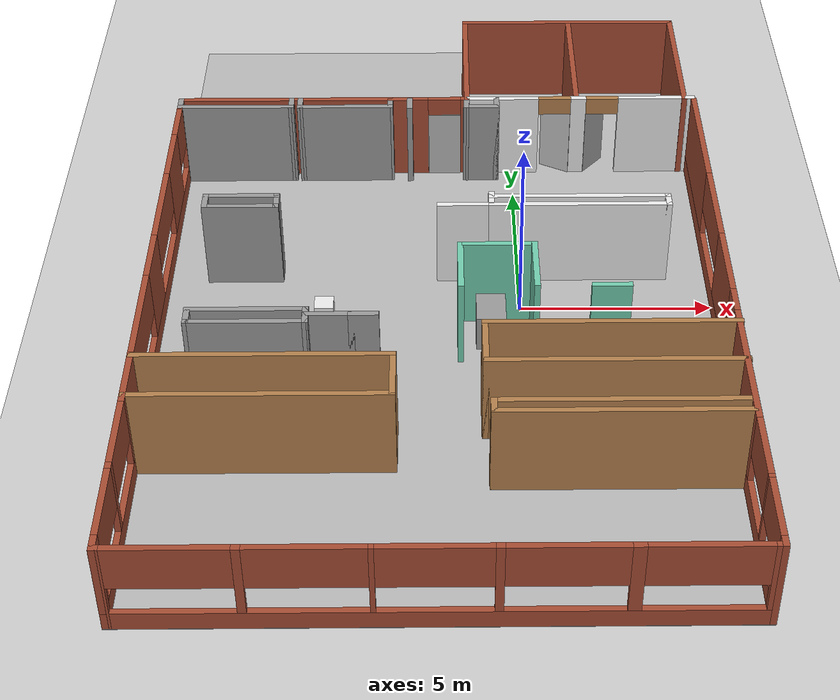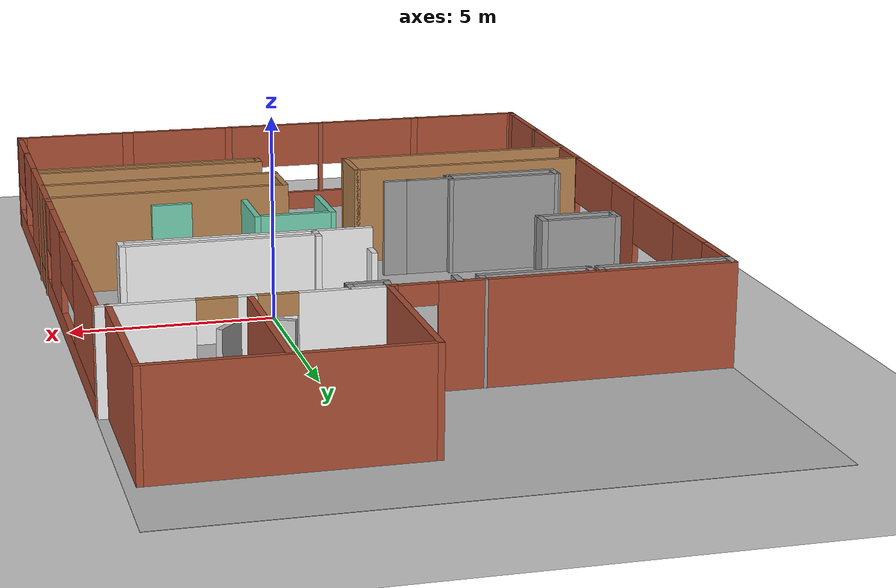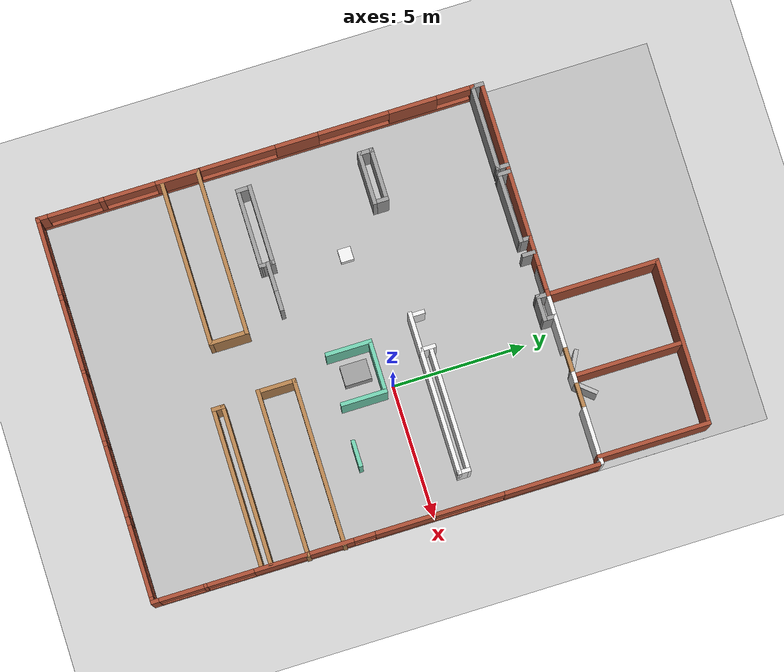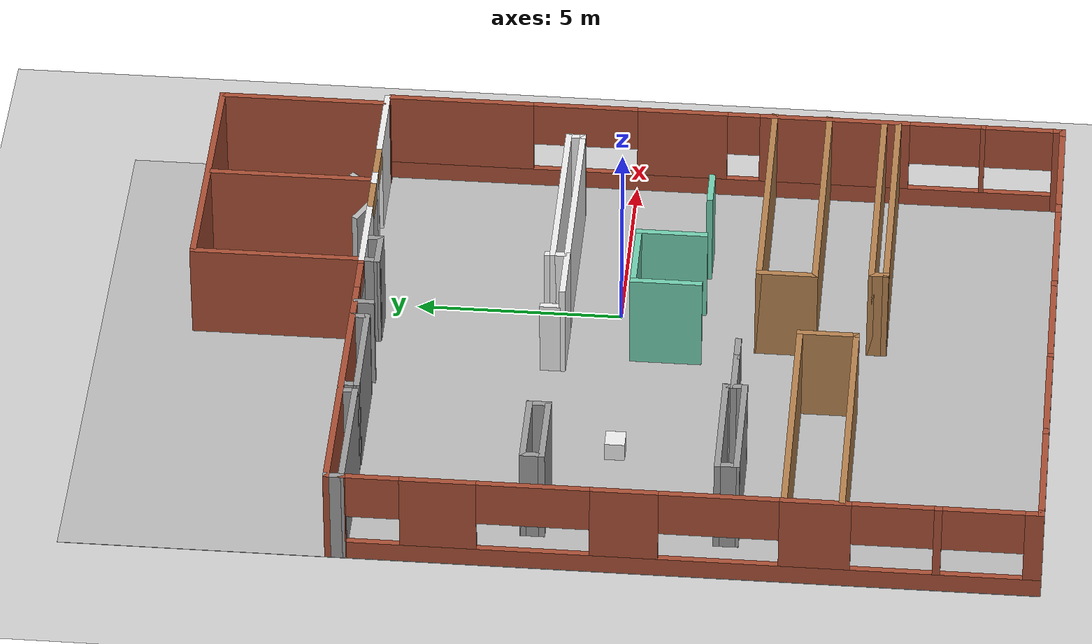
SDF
<sdf version="1.7">
 <world name="default">
  <light name="sun" type="directional">
   <pose>0 0 10 0 -0 0</pose>
   <diffuse>0.8 0.8 0.8 1</diffuse>
   <specular>0.2 0.2 0.2 1</specular>
   <attenuation>
    <range>1000</range>
    <constant>0.9</constant>
    <linear>0.01</linear>
    <quadratic>0.001</quadratic>
   </attenuation>
   <direction>-0.5 0.1 -0.9</direction>
   <spot><inner_angle>0</inner_angle><outer_angle>0</outer_angle><falloff>0</falloff></spot>
  </light>
  <model name="ground_plane">
   <static>1</static>
   <link name="link">
    <collision name="collision">
     <geometry><plane><normal>0 0 1</normal><size>100 100</size></plane></geometry>
     <surface>
      <contact><collide_bitmask>65535</collide_bitmask></contact>
      <friction><ode><mu>100</mu><mu2>50</mu2></ode></friction>
     </surface>
    </collision>
    <visual name="visual">
     <cast_shadows>0</cast_shadows>
     <geometry><plane><normal>0 0 1</normal><size>100 100</size></plane></geometry>
     <material>
      <script><uri>file://media/materials/scripts/gazebo.material</uri><name>Gazebo/Grey</name></script>
     </material>
    </visual>
   </link>
  </model>
  <gravity>0 0 -9.8</gravity>
  <magnetic_field>6e-06 2.3e-05 -4.2e-05</magnetic_field>
  <atmosphere type="adiabatic"/>
  <physics type="ode">
   <max_step_size>0.001</max_step_size>
   <real_time_factor>1</real_time_factor>
   <real_time_update_rate>1000</real_time_update_rate>
  </physics>
  <scene><ambient>0.4 0.4 0.4 1</ambient><background>0.7 0.7 0.7 1</background><shadows>1</shadows></scene>
  <spherical_coordinates>
   <surface_model>EARTH_WGS84</surface_model>
   <latitude_deg>0</latitude_deg>
   <longitude_deg>0</longitude_deg>
   <elevation>0</elevation>
   <heading_deg>0</heading_deg>
  </spherical_coordinates>
  <model name="1cs_v2">
   <pose>-2.09868 -0.09237 0 0 -0 0</pose>
   <link name="Wall_0">
    <pose>-7.1889 -2.22765 0 0 -0 -1.5708</pose>
    <visual name="Wall_0_Visual_0">
     <pose>-8.16435 0 1.25 0 -0 0</pose>
     <geometry><box><size>0.171298 0.15 2.5</size></box></geometry>
     <material>
      <script><uri>file://media/materials/scripts/gazebo.material</uri><name>Gazebo/Bricks</name></script>
      <ambient>1 1 1 1</ambient>
     </material>
     <meta><layer>0</layer></meta>
    </visual>
    <collision name="Wall_0_Collision_0">
     <geometry><box><size>0.171298 0.15 2.5</size></box></geometry>
     <pose>-8.16435 0 1.25 0 -0 0</pose>
    </collision>
    <visual name="Wall_0_Visual_1">
     <pose>0.085649 0 0.25 0 -0 0</pose>
     <geometry><box><size>16.3287 0.15 0.5</size></box></geometry>
     <material>
      <script><uri>file://media/materials/scripts/gazebo.material</uri><name>Gazebo/Bricks</name></script>
      <ambient>1 1 1 1</ambient>
     </material>
     <meta><layer>0</layer></meta>
    </visual>
    <collision name="Wall_0_Collision_1">
     <geometry><box><size>16.3287 0.15 0.5</size></box></geometry>
     <pose>0.085649 0 0.25 0 -0 0</pose>
    </collision>
    <visual name="Wall_0_Visual_2">
     <pose>-5.91311 0 1.5 0 -0 0</pose>
     <geometry><box><size>1.8087 0.15 2</size></box></geometry>
     <material>
      <script><uri>file://media/materials/scripts/gazebo.material</uri><name>Gazebo/Bricks</name></script>
      <ambient>1 1 1 1</ambient>
     </material>
     <meta><layer>0</layer></meta>
    </visual>
    <collision name="Wall_0_Collision_2">
     <geometry><box><size>1.8087 0.15 2</size></box></geometry>
     <pose>-5.91311 0 1.5 0 -0 0</pose>
    </collision>
    <visual name="Wall_0_Visual_3">
     <pose>-1.54382 0 1.5 0 -0 0</pose>
     <geometry><box><size>1.60965 0.15 2</size></box></geometry>
     <material>
      <script><uri>file://media/materials/scripts/gazebo.material</uri><name>Gazebo/Bricks</name></script>
      <ambient>1 1 1 1</ambient>
     </material>
     <meta><layer>0</layer></meta>
    </visual>
    <collision name="Wall_0_Collision_3">
     <geometry><box><size>1.60965 0.15 2</size></box></geometry>
     <pose>-1.54382 0 1.5 0 -0 0</pose>
    </collision>
    <visual name="Wall_0_Visual_4">
     <pose>2.92476 0 1.5 0 -0 0</pose>
     <geometry><box><size>1.6805 0.15 2</size></box></geometry>
     <material>
      <script><uri>file://media/materials/scripts/gazebo.material</uri><name>Gazebo/Bricks</name></script>
      <ambient>1 1 1 1</ambient>
     </material>
     <meta><layer>0</layer></meta>
    </visual>
    <collision name="Wall_0_Collision_4">
     <geometry><box><size>1.6805 0.15 2</size></box></geometry>
     <pose>2.92476 0 1.5 0 -0 0</pose>
    </collision>
    <visual name="Wall_0_Visual_5">
     <pose>5.78474 0 1.5 0 -0 0</pose>
     <geometry><box><size>0.188569 0.15 2</size></box></geometry>
     <material>
      <script><uri>file://media/materials/scripts/gazebo.material</uri><name>Gazebo/Bricks</name></script>
      <ambient>1 1 1 1</ambient>
     </material>
     <meta><layer>0</layer></meta>
    </visual>
    <collision name="Wall_0_Collision_5">
     <geometry><box><size>0.188569 0.15 2</size></box></geometry>
     <pose>5.78474 0 1.5 0 -0 0</pose>
    </collision>
    <visual name="Wall_0_Visual_6">
     <pose>8.02724 0 1.5 0 -0 0</pose>
     <geometry><box><size>0.445524 0.15 2</size></box></geometry>
     <material>
      <script><uri>file://media/materials/scripts/gazebo.material</uri><name>Gazebo/Bricks</name></script>
      <ambient>1 1 1 1</ambient>
     </material>
     <meta><layer>0</layer></meta>
    </visual>
    <collision name="Wall_0_Collision_6">
     <geometry><box><size>0.445524 0.15 2</size></box></geometry>
     <pose>8.02724 0 1.5 0 -0 0</pose>
    </collision>
    <visual name="Wall_0_Visual_7">
     <pose>-7.44808 0 1.9 0 -0 0</pose>
     <geometry><box><size>1.26125 0.15 1.2</size></box></geometry>
     <material>
      <script><uri>file://media/materials/scripts/gazebo.material</uri><name>Gazebo/Bricks</name></script>
      <ambient>1 1 1 1</ambient>
     </material>
     <meta><layer>0</layer></meta>
    </visual>
    <collision name="Wall_0_Collision_7">
     <geometry><box><size>1.26125 0.15 1.2</size></box></geometry>
     <pose>-7.44808 0 1.9 0 -0 0</pose>
    </collision>
    <visual name="Wall_0_Visual_8">
     <pose>-3.6787 0 1.9 0 -0 0</pose>
     <geometry><box><size>2.66011 0.15 1.2</size></box></geometry>
     <material>
      <script><uri>file://media/materials/scripts/gazebo.material</uri><name>Gazebo/Bricks</name></script>
      <ambient>1 1 1 1</ambient>
     </material>
     <meta><layer>0</layer></meta>
    </visual>
    <collision name="Wall_0_Collision_8">
     <geometry><box><size>2.66011 0.15 1.2</size></box></geometry>
     <pose>-3.6787 0 1.9 0 -0 0</pose>
    </collision>
    <visual name="Wall_0_Visual_9">
     <pose>0.672759 0 1.9 0 -0 0</pose>
     <geometry><box><size>2.82351 0.15 1.2</size></box></geometry>
     <material>
      <script><uri>file://media/materials/scripts/gazebo.material</uri><name>Gazebo/Bricks</name></script>
      <ambient>1 1 1 1</ambient>
     </material>
     <meta><layer>0</layer></meta>
    </visual>
    <collision name="Wall_0_Collision_9">
     <geometry><box><size>2.82351 0.15 1.2</size></box></geometry>
     <pose>0.672759 0 1.9 0 -0 0</pose>
    </collision>
    <visual name="Wall_0_Visual_10">
     <pose>4.72774 0 1.9 0 -0 0</pose>
     <geometry><box><size>1.92545 0.15 1.2</size></box></geometry>
     <material>
      <script><uri>file://media/materials/scripts/gazebo.material</uri><name>Gazebo/Bricks</name></script>
      <ambient>1 1 1 1</ambient>
     </material>
     <meta><layer>0</layer></meta>
    </visual>
    <collision name="Wall_0_Collision_10">
     <geometry><box><size>1.92545 0.15 1.2</size></box></geometry>
     <pose>4.72774 0 1.9 0 -0 0</pose>
    </collision>
    <visual name="Wall_0_Visual_11">
     <pose>6.84175 0 1.9 0 -0 0</pose>
     <geometry><box><size>1.92545 0.15 1.2</size></box></geometry>
     <material>
      <script><uri>file://media/materials/scripts/gazebo.material</uri><name>Gazebo/Bricks</name></script>
      <ambient>1 1 1 1</ambient>
     </material>
     <meta><layer>0</layer></meta>
    </visual>
    <collision name="Wall_0_Collision_11">
     <geometry><box><size>1.92545 0.15 1.2</size></box></geometry>
     <pose>6.84175 0 1.9 0 -0 0</pose>
    </collision>
   </link>
   <link name="Wall_10">
    <pose>7.1611 -2.10265 0 0 -0 1.5708</pose>
    <visual name="Wall_10_Visual_0">
     <pose>-8.22126 0 1.25 0 -0 0</pose>
     <geometry><box><size>0.307478 0.15 2.5</size></box></geometry>
     <material>
      <script><uri>file://media/materials/scripts/gazebo.material</uri><name>Gazebo/Bricks</name></script>
      <ambient>1 1 1 1</ambient>
     </material>
     <meta><layer>0</layer></meta>
    </visual>
    <collision name="Wall_10_Collision_0">
     <geometry><box><size>0.307478 0.15 2.5</size></box></geometry>
     <pose>-8.22126 0 1.25 0 -0 0</pose>
    </collision>
    <visual name="Wall_10_Visual_1">
     <pose>0.153739 0 0.25 0 -0 0</pose>
     <geometry><box><size>16.4425 0.15 0.5</size></box></geometry>
     <material>
      <script><uri>file://media/materials/scripts/gazebo.material</uri><name>Gazebo/Bricks</name></script>
      <ambient>1 1 1 1</ambient>
     </material>
     <meta><layer>0</layer></meta>
    </visual>
    <collision name="Wall_10_Collision_1">
     <geometry><box><size>16.4425 0.15 0.5</size></box></geometry>
     <pose>0.153739 0 0.25 0 -0 0</pose>
    </collision>
    <visual name="Wall_10_Visual_2">
     <pose>-6.34004 0 1.5 0 -0 0</pose>
     <geometry><box><size>0.121166 0.15 2</size></box></geometry>
     <material>
      <script><uri>file://media/materials/scripts/gazebo.material</uri><name>Gazebo/Bricks</name></script>
      <ambient>1 1 1 1</ambient>
     </material>
     <meta><layer>0</layer></meta>
    </visual>
    <collision name="Wall_10_Collision_2">
     <geometry><box><size>0.121166 0.15 2</size></box></geometry>
     <pose>-6.34004 0 1.5 0 -0 0</pose>
    </collision>
    <visual name="Wall_10_Visual_3">
     <pose>-2.68236 0 1.5 0 -0 0</pose>
     <geometry><box><size>3.70831 0.15 2</size></box></geometry>
     <material>
      <script><uri>file://media/materials/scripts/gazebo.material</uri><name>Gazebo/Bricks</name></script>
      <ambient>1 1 1 1</ambient>
     </material>
     <meta><layer>0</layer></meta>
    </visual>
    <collision name="Wall_10_Collision_3">
     <geometry><box><size>3.70831 0.15 2</size></box></geometry>
     <pose>-2.68236 0 1.5 0 -0 0</pose>
    </collision>
    <visual name="Wall_10_Visual_4">
     <pose>1.08606 0 1.5 0 -0 0</pose>
     <geometry><box><size>2.22852 0.15 2</size></box></geometry>
     <material>
      <script><uri>file://media/materials/scripts/gazebo.material</uri><name>Gazebo/Bricks</name></script>
      <ambient>1 1 1 1</ambient>
     </material>
     <meta><layer>0</layer></meta>
    </visual>
    <collision name="Wall_10_Collision_4">
     <geometry><box><size>2.22852 0.15 2</size></box></geometry>
     <pose>1.08606 0 1.5 0 -0 0</pose>
    </collision>
    <visual name="Wall_10_Visual_5">
     <pose>6.58035 0 1.5 0 -0 0</pose>
     <geometry><box><size>3.5893 0.15 2</size></box></geometry>
     <material>
      <script><uri>file://media/materials/scripts/gazebo.material</uri><name>Gazebo/Bricks</name></script>
      <ambient>1 1 1 1</ambient>
     </material>
     <meta><layer>0</layer></meta>
    </visual>
    <collision name="Wall_10_Collision_5">
     <geometry><box><size>3.5893 0.15 2</size></box></geometry>
     <pose>6.58035 0 1.5 0 -0 0</pose>
    </collision>
    <visual name="Wall_10_Visual_6">
     <pose>-7.23407 0 1.9 0 -0 0</pose>
     <geometry><box><size>1.6669 0.15 1.2</size></box></geometry>
     <material>
      <script><uri>file://media/materials/scripts/gazebo.material</uri><name>Gazebo/Bricks</name></script>
      <ambient>1 1 1 1</ambient>
     </material>
     <meta><layer>0</layer></meta>
    </visual>
    <collision name="Wall_10_Collision_6">
     <geometry><box><size>1.6669 0.15 1.2</size></box></geometry>
     <pose>-7.23407 0 1.9 0 -0 0</pose>
    </collision>
    <visual name="Wall_10_Visual_7">
     <pose>-5.40799 0 1.9 0 -0 0</pose>
     <geometry><box><size>1.74294 0.15 1.2</size></box></geometry>
     <material>
      <script><uri>file://media/materials/scripts/gazebo.material</uri><name>Gazebo/Bricks</name></script>
      <ambient>1 1 1 1</ambient>
     </material>
     <meta><layer>0</layer></meta>
    </visual>
    <collision name="Wall_10_Collision_7">
     <geometry><box><size>1.74294 0.15 1.2</size></box></geometry>
     <pose>-5.40799 0 1.9 0 -0 0</pose>
    </collision>
    <visual name="Wall_10_Visual_8">
     <pose>-0.428203 0 1.9 0 -0 0</pose>
     <geometry><box><size>0.8 0.15 1.2</size></box></geometry>
     <material>
      <script><uri>file://media/materials/scripts/gazebo.material</uri><name>Gazebo/Bricks</name></script>
      <ambient>1 1 1 1</ambient>
     </material>
     <meta><layer>0</layer></meta>
    </visual>
    <collision name="Wall_10_Collision_8">
     <geometry><box><size>0.8 0.15 1.2</size></box></geometry>
     <pose>-0.428203 0 1.9 0 -0 0</pose>
    </collision>
    <visual name="Wall_10_Visual_9">
     <pose>3.49301 0 1.9 0 -0 0</pose>
     <geometry><box><size>2.58537 0.15 1.2</size></box></geometry>
     <material>
      <script><uri>file://media/materials/scripts/gazebo.material</uri><name>Gazebo/Bricks</name></script>
      <ambient>1 1 1 1</ambient>
     </material>
     <meta><layer>0</layer></meta>
    </visual>
    <collision name="Wall_10_Collision_9">
     <geometry><box><size>2.58537 0.15 1.2</size></box></geometry>
     <pose>3.49301 0 1.9 0 -0 0</pose>
    </collision>
   </link>
   <link name="Wall_101">
    <collision name="Wall_101_Collision">
     <geometry><box><size>2.66781 0.15 2.5</size></box></geometry>
     <pose>0 0 1.25 0 -0 0</pose>
    </collision>
    <visual name="Wall_101_Visual">
     <pose>0 0 1.25 0 -0 0</pose>
     <geometry><box><size>2.66781 0.15 2.5</size></box></geometry>
     <material>
      <script><uri>file://media/materials/scripts/gazebo.material</uri><name>Gazebo/Grey</name></script>
      <ambient>1 1 1 1</ambient>
     </material>
     <meta><layer>0</layer></meta>
    </visual>
    <pose>-2.59778 5.93848 0 0 -0 0.007052</pose>
   </link>
   <link name="Wall_12">
    <collision name="Wall_12_Collision">
     <geometry><box><size>0.532123 0.15 2.5</size></box></geometry>
     <pose>0 0 1.25 0 -0 0</pose>
    </collision>
    <visual name="Wall_12_Visual">
     <pose>0 0 1.25 0 -0 0</pose>
     <geometry><box><size>0.532123 0.15 2.5</size></box></geometry>
     <material>
      <script><uri>file://media/materials/scripts/gazebo.material</uri><name>Gazebo/Grey</name></script>
      <ambient>1 1 1 1</ambient>
     </material>
     <meta><layer>0</layer></meta>
    </visual>
    <pose>0.790397 6.11196 0 0 -0 -1.63317</pose>
   </link>
   <link name="Wall_14">
    <collision name="Wall_14_Collision">
     <geometry><box><size>1 0.15 2.5</size></box></geometry>
     <pose>0 0 1.25 0 -0 0</pose>
    </collision>
    <visual name="Wall_14_Visual">
     <pose>0 0 1.25 0 -0 0</pose>
     <geometry><box><size>1 0.15 2.5</size></box></geometry>
     <material>
      <script><uri>file://media/materials/scripts/gazebo.material</uri><name>Gazebo/Grey</name></script>
      <ambient>1 1 1 1</ambient>
     </material>
     <meta><layer>0</layer></meta>
    </visual>
    <pose>1.20349 5.92127 0 0 -0 0</pose>
   </link>
   <link name="Wall_15">
    <collision name="Wall_15_Collision">
     <geometry><box><size>0.5 0.15 2.5</size></box></geometry>
     <pose>0 0 1.25 0 -0 0</pose>
    </collision>
    <visual name="Wall_15_Visual">
     <pose>0 0 1.25 0 -0 0</pose>
     <geometry><box><size>0.5 0.15 2.5</size></box></geometry>
     <material>
      <script><uri>file://media/materials/scripts/gazebo.material</uri><name>Gazebo/Grey</name></script>
      <ambient>1 1 1 1</ambient>
     </material>
     <meta><layer>0</layer></meta>
    </visual>
    <pose>1.62849 6.09627 0 0 -0 1.5708</pose>
   </link>
   <link name="Wall_27">
    <collision name="Wall_27_Collision">
     <geometry><box><size>0.5 0.15 2.5</size></box></geometry>
     <pose>0 0 1.25 0 -0 0</pose>
    </collision>
    <visual name="Wall_27_Visual">
     <pose>0 0 1.25 0 -0 0</pose>
     <geometry><box><size>0.5 0.15 2.5</size></box></geometry>
     <material>
      <script><uri>file://media/materials/scripts/gazebo.material</uri><name>Gazebo/Grey</name></script>
      <ambient>1 1 1 1</ambient>
     </material>
     <meta><layer>0</layer></meta>
    </visual>
    <pose>-0.79635 6.07769 0 0 -0 1.5708</pose>
   </link>
   <link name="Wall_3">
    <collision name="Wall_3_Collision">
     <geometry><box><size>0.5 0.15 2.5</size></box></geometry>
     <pose>0 0 1.25 0 -0 0</pose>
    </collision>
    <visual name="Wall_3_Visual">
     <pose>0 0 1.25 0 -0 0</pose>
     <geometry><box><size>0.5 0.15 2.5</size></box></geometry>
     <material>
      <script><uri>file://media/materials/scripts/gazebo.material</uri><name>Gazebo/Grey</name></script>
      <ambient>1 1 1 1</ambient>
     </material>
     <meta><layer>0</layer></meta>
    </visual>
    <pose>-1.3389 6.12235 0 0 -0 1.5708</pose>
   </link>
   <link name="Wall_33">
    <collision name="Wall_33_Collision">
     <geometry><box><size>4.25 0.15 2.5</size></box></geometry>
     <pose>0 0 1.25 0 -0 0</pose>
    </collision>
    <visual name="Wall_33_Visual">
     <pose>0 0 1.25 0 -0 0</pose>
     <geometry><box><size>4.25 0.15 2.5</size></box></geometry>
     <material>
      <script><uri>file://media/materials/scripts/gazebo.material</uri><name>Gazebo/Bricks</name></script>
      <ambient>1 1 1 1</ambient>
     </material>
     <meta><layer>0</layer></meta>
    </visual>
    <pose>0.802307 8.35265 0 0 -0 1.5708</pose>
   </link>
   <link name="Wall_34">
    <collision name="Wall_34_Collision">
     <geometry><box><size>6.25 0.15 2.5</size></box></geometry>
     <pose>0 0 1.25 0 -0 0</pose>
    </collision>
    <visual name="Wall_34_Visual">
     <pose>0 0 1.25 0 -0 0</pose>
     <geometry><box><size>6.25 0.15 2.5</size></box></geometry>
     <material>
      <script><uri>file://media/materials/scripts/gazebo.material</uri><name>Gazebo/Bricks</name></script>
      <ambient>1 1 1 1</ambient>
     </material>
     <meta><layer>0</layer></meta>
    </visual>
    <pose>3.85231 10.4026 0 0 -0 0</pose>
   </link>
   <link name="Wall_35">
    <collision name="Wall_35_Collision">
     <geometry><box><size>4.25 0.15 2.5</size></box></geometry>
     <pose>0 0 1.25 0 -0 0</pose>
    </collision>
    <visual name="Wall_35_Visual">
     <pose>0 0 1.25 0 -0 0</pose>
     <geometry><box><size>4.25 0.15 2.5</size></box></geometry>
     <material>
      <script><uri>file://media/materials/scripts/gazebo.material</uri><name>Gazebo/Bricks</name></script>
      <ambient>1 1 1 1</ambient>
     </material>
     <meta><layer>0</layer></meta>
    </visual>
    <pose>6.90231 8.35265 0 0 -0 -1.5708</pose>
   </link>
   <link name="Wall_37">
    <collision name="Wall_37_Collision">
     <geometry><box><size>4 0.15 2.5</size></box></geometry>
     <pose>0 0 1.25 0 -0 0</pose>
    </collision>
    <visual name="Wall_37_Visual">
     <pose>0 0 1.25 0 -0 0</pose>
     <geometry><box><size>4 0.15 2.5</size></box></geometry>
     <material>
      <script><uri>file://media/materials/scripts/gazebo.material</uri><name>Gazebo/Bricks</name></script>
      <ambient>1 1 1 1</ambient>
     </material>
     <meta><layer>0</layer></meta>
    </visual>
    <pose>3.8726 8.38806 0 0 -0 -1.5708</pose>
   </link>
   <link name="Wall_39">
    <collision name="Wall_39_Collision">
     <geometry><box><size>0.5 0.15 2.5</size></box></geometry>
     <pose>0 0 1.25 0 -0 0</pose>
    </collision>
    <visual name="Wall_39_Visual">
     <pose>0 0 0.75 0 -0 0</pose>
     <geometry><box><size>0.5 0.15 2.5</size></box></geometry>
     <material>
      <script><name>Gazebo/White</name><uri>__default__</uri></script>
      <ambient>1 1 1 1</ambient>
     </material>
     <meta><layer>0</layer></meta>
    </visual>
    <pose>0.023831 1.66523 0 0 -0 -1.5708</pose>
   </link>
   <link name="Wall_4">
    <pose>-0.268298 6.3 0 0 -0 0.002472</pose>
    <visual name="Wall_4_Visual_0">
     <pose>-0.580437 0 1.25 0 -0 0</pose>
     <geometry><box><size>1.13034 0.15 2.5</size></box></geometry>
     <material>
      <script><uri>file://media/materials/scripts/gazebo.material</uri><name>Gazebo/Bricks</name></script>
      <ambient>1 1 1 1</ambient>
     </material>
     <meta><layer>0</layer></meta>
    </visual>
    <collision name="Wall_4_Collision_0">
     <geometry><box><size>1.13034 0.15 2.5</size></box></geometry>
     <pose>-0.580437 0 1.25 0 -0 0</pose>
    </collision>
    <visual name="Wall_4_Visual_1">
     <pose>1.01517 0 1.25 0 -0 0</pose>
     <geometry><box><size>0.260874 0.15 2.5</size></box></geometry>
     <material>
      <script><uri>file://media/materials/scripts/gazebo.material</uri><name>Gazebo/Bricks</name></script>
      <ambient>1 1 1 1</ambient>
     </material>
     <meta><layer>0</layer></meta>
    </visual>
    <collision name="Wall_4_Collision_1">
     <geometry><box><size>0.260874 0.15 2.5</size></box></geometry>
     <pose>1.01517 0 1.25 0 -0 0</pose>
    </collision>
    <visual name="Wall_4_Visual_2">
     <pose>0.434734 0 2.25 0 -0 0</pose>
     <geometry><box><size>0.9 0.15 0.5</size></box></geometry>
     <material>
      <script><uri>file://media/materials/scripts/gazebo.material</uri><name>Gazebo/Bricks</name></script>
      <ambient>1 1 1 1</ambient>
     </material>
     <meta><layer>0</layer></meta>
    </visual>
    <collision name="Wall_4_Collision_2">
     <geometry><box><size>0.9 0.15 0.5</size></box></geometry>
     <pose>0.434734 0 2.25 0 -0 0</pose>
    </collision>
   </link>
   <link name="Wall_40">
    <collision name="Wall_40_Collision">
     <geometry><box><size>1.5 0.15 2.5</size></box></geometry>
     <pose>0 0 1.25 0 -0 0</pose>
    </collision>
    <visual name="Wall_40_Visual">
     <pose>0 0 1.25 0 -0 0</pose>
     <geometry><box><size>1.5 0.15 2.5</size></box></geometry>
     <material>
      <script><name>Gazebo/White</name><uri>__default__</uri></script>
      <ambient>1 1 1 1</ambient>
     </material>
     <meta><layer>0</layer></meta>
    </visual>
    <pose>0.698831 1.36523 0 0 -0 0</pose>
   </link>
   <link name="Wall_41">
    <collision name="Wall_41_Collision">
     <geometry><box><size>4.75 0.15 2.5</size></box></geometry>
     <pose>0 0 1.25 0 -0 0</pose>
    </collision>
    <visual name="Wall_41_Visual">
     <pose>0 0 1.25 0 -0 0</pose>
     <geometry><box><size>4.75 0.15 2.5</size></box></geometry>
     <material>
      <script><name>Gazebo/White</name><uri>__default__</uri></script>
      <ambient>1 1 1 1</ambient>
     </material>
     <meta><layer>0</layer></meta>
    </visual>
    <pose>3.67383 1.36523 0 0 -0 0</pose>
   </link>
   <link name="Wall_42">
    <collision name="Wall_42_Collision">
     <geometry><box><size>0.5 0.15 2.5</size></box></geometry>
     <pose>0 0 1.25 0 -0 0</pose>
    </collision>
    <visual name="Wall_42_Visual">
     <pose>0 0 1.25 0 -0 0</pose>
     <geometry><box><size>0.5 0.15 2.5</size></box></geometry>
     <material>
      <script><name>Gazebo/White</name><uri>__default__</uri></script>
      <ambient>1 1 1 1</ambient>
     </material>
     <meta><layer>0</layer></meta>
    </visual>
    <pose>5.97383 1.54023 0 0 -0 1.5708</pose>
   </link>
   <link name="Wall_43">
    <collision name="Wall_43_Collision">
     <geometry><box><size>4.75 0.15 2.5</size></box></geometry>
     <pose>0 0 1.25 0 -0 0</pose>
    </collision>
    <visual name="Wall_43_Visual">
     <pose>0 0 1.25 0 -0 0</pose>
     <geometry><box><size>4.75 0.15 2.5</size></box></geometry>
     <material>
      <script><name>Gazebo/White</name><uri>__default__</uri></script>
      <ambient>1 1 1 1</ambient>
     </material>
     <meta><layer>0</layer></meta>
    </visual>
    <pose>3.67383 1.71523 0 0 -0 3.14159</pose>
   </link>
   <link name="Wall_45">
    <collision name="Wall_45_Collision">
     <geometry><box><size>0.5 0.15 2.5</size></box></geometry>
     <pose>0 0 1.25 0 -0 0</pose>
    </collision>
    <visual name="Wall_45_Visual">
     <pose>0 0 1.25 0 -0 0</pose>
     <geometry><box><size>0.5 0.15 2.5</size></box></geometry>
     <material>
      <script><name>Gazebo/White</name><uri>__default__</uri></script>
      <ambient>1 1 1 1</ambient>
     </material>
     <meta><layer>0</layer></meta>
    </visual>
    <pose>1.37383 1.66523 0 0 -0 1.5708</pose>
   </link>
   <link name="Wall_47">
    <collision name="Wall_47_Collision">
     <geometry><box><size>1.75 0.15 2.5</size></box></geometry>
     <pose>0 0 1.25 0 -0 0</pose>
    </collision>
    <visual name="Wall_47_Visual">
     <pose>0 0 1.25 0 -0 0</pose>
     <geometry><box><size>1.75 0.15 2.5</size></box></geometry>
     <material>
      <script><uri>file://media/materials/scripts/gazebo.material</uri><name>Gazebo/Grey</name></script>
      <ambient>0.435294 0.796078 0.67451 1</ambient>
     </material>
     <meta><layer>0</layer></meta>
    </visual>
    <pose>0.541626 -1.09292 0 0 -0 1.5708</pose>
   </link>
   <link name="Wall_49">
    <collision name="Wall_49_Collision">
     <geometry><box><size>1.75 0.15 2.5</size></box></geometry>
     <pose>0 0 1.25 0 -0 0</pose>
    </collision>
    <visual name="Wall_49_Visual">
     <pose>0 0 1.25 0 -0 0</pose>
     <geometry><box><size>1.75 0.15 2.5</size></box></geometry>
     <material>
      <script><uri>file://media/materials/scripts/gazebo.material</uri><name>Gazebo/Grey</name></script>
      <ambient>0.435294 0.796078 0.67451 1</ambient>
     </material>
     <meta><layer>0</layer></meta>
    </visual>
    <pose>1.46 -0.29292 0 0 -0 0</pose>
   </link>
   <link name="Wall_5">
    <pose>3.96426 6.31134 0 0 -0 0.00275</pose>
    <visual name="Wall_5_Visual_0">
     <pose>-2.1918 0 1.25 0 -0 0</pose>
     <geometry><box><size>2.09034 0.15 2.5</size></box></geometry>
     <material>
      <script><name>Gazebo/White</name><uri>__default__</uri></script>
      <ambient>1 1 1 1</ambient>
     </material>
     <meta><layer>0</layer></meta>
    </visual>
    <collision name="Wall_5_Collision_0">
     <geometry><box><size>2.09034 0.15 2.5</size></box></geometry>
     <pose>-2.1918 0 1.25 0 -0 0</pose>
    </collision>
    <visual name="Wall_5_Visual_1">
     <pose>-0.031435 0 1.25 0 -0 0</pose>
     <geometry><box><size>0.430392 0.15 2.5</size></box></geometry>
     <material>
      <script><name>Gazebo/White</name><uri>__default__</uri></script>
      <ambient>1 1 1 1</ambient>
     </material>
     <meta><layer>0</layer></meta>
    </visual>
    <collision name="Wall_5_Collision_1">
     <geometry><box><size>0.430392 0.15 2.5</size></box></geometry>
     <pose>-0.031435 0 1.25 0 -0 0</pose>
    </collision>
    <visual name="Wall_5_Visual_2">
     <pose>2.16037 0 1.25 0 -0 0</pose>
     <geometry><box><size>2.15321 0.15 2.5</size></box></geometry>
     <material>
      <script><name>Gazebo/White</name><uri>__default__</uri></script>
      <ambient>1 1 1 1</ambient>
     </material>
     <meta><layer>0</layer></meta>
    </visual>
    <collision name="Wall_5_Collision_2">
     <geometry><box><size>2.15321 0.15 2.5</size></box></geometry>
     <pose>2.16037 0 1.25 0 -0 0</pose>
    </collision>
    <visual name="Wall_5_Visual_3">
     <pose>-0.69663 0 2.25 0 -0 0</pose>
     <geometry><box><size>0.9 0.15 0.5</size></box></geometry>
     <material>
      <script><uri>file://media/materials/scripts/gazebo.material</uri><name>Gazebo/Wood</name></script>
      <ambient>1 1 1 1</ambient>
     </material>
     <meta><layer>0</layer></meta>
    </visual>
    <collision name="Wall_5_Collision_3">
     <geometry><box><size>0.9 0.15 0.5</size></box></geometry>
     <pose>-0.69663 0 2.25 0 -0 0</pose>
    </collision>
    <visual name="Wall_5_Visual_4">
     <pose>0.633761 0 2.25 0 -0 0</pose>
     <geometry><box><size>0.9 0.15 0.5</size></box></geometry>
     <material>
      <script><uri>file://media/materials/scripts/gazebo.material</uri><name>Gazebo/Wood</name></script>
      <ambient>1 1 1 1</ambient>
     </material>
     <meta><layer>0</layer></meta>
    </visual>
    <collision name="Wall_5_Collision_4">
     <geometry><box><size>0.9 0.15 0.5</size></box></geometry>
     <pose>0.633761 0 2.25 0 -0 0</pose>
    </collision>
   </link>
   <link name="Wall_51">
    <collision name="Wall_51_Collision">
     <geometry><box><size>1 0.15 2.5</size></box></geometry>
     <pose>0 0 1.25 0 -0 0</pose>
    </collision>
    <visual name="Wall_51_Visual">
     <pose>0 0 1.25 0 -0 0</pose>
     <geometry><box><size>1 0.15 2.5</size></box></geometry>
     <material>
      <script><uri>file://media/materials/scripts/gazebo.material</uri><name>Gazebo/Grey</name></script>
      <ambient>0.435294 0.796078 0.67451 1</ambient>
     </material>
     <meta><layer>0</layer></meta>
    </visual>
    <pose>4.24325 -1.92151 0 0 -0 3.14159</pose>
   </link>
   <link name="Wall_53">
    <collision name="Wall_53_Collision">
     <geometry><box><size>1.75 0.15 2.5</size></box></geometry>
     <pose>0 0 1.25 0 -0 0</pose>
    </collision>
    <visual name="Wall_53_Visual">
     <pose>0 0 1.25 0 -0 0</pose>
     <geometry><box><size>1.75 0.15 2.5</size></box></geometry>
     <material>
      <script><uri>file://media/materials/scripts/gazebo.material</uri><name>Gazebo/Grey</name></script>
      <ambient>0.435294 0.796078 0.67451 1</ambient>
     </material>
     <meta><layer>0</layer></meta>
    </visual>
    <pose>2.41126 -1.09292 0 0 -0 -1.5708</pose>
   </link>
   <link name="Wall_55">
    <collision name="Wall_55_Collision">
     <geometry><box><size>2 0.15 2.5</size></box></geometry>
     <pose>0 0 1.25 0 -0 0</pose>
    </collision>
    <visual name="Wall_55_Visual">
     <pose>0 0 1.25 0 -0 0</pose>
     <geometry><box><size>2 0.15 2.5</size></box></geometry>
     <material>
      <script><uri>file://media/materials/scripts/gazebo.material</uri><name>Gazebo/Grey</name></script>
      <ambient>1 1 1 1</ambient>
     </material>
     <meta><layer>0</layer></meta>
    </visual>
    <pose>-5.13352 1.79046 0 0 -0 0</pose>
   </link>
   <link name="Wall_56">
    <collision name="Wall_56_Collision">
     <geometry><box><size>0.594464 0.15 2.5</size></box></geometry>
     <pose>0 0 1.25 0 -0 0</pose>
    </collision>
    <visual name="Wall_56_Visual">
     <pose>0 0 1.25 0 -0 0</pose>
     <geometry><box><size>0.594464 0.15 2.5</size></box></geometry>
     <material>
      <script><uri>file://media/materials/scripts/gazebo.material</uri><name>Gazebo/Grey</name></script>
      <ambient>1 1 1 1</ambient>
     </material>
     <meta><layer>0</layer></meta>
    </visual>
    <pose>-4.20852 1.56823 0 0 -0 -1.5708</pose>
   </link>
   <link name="Wall_57">
    <collision name="Wall_57_Collision">
     <geometry><box><size>2 0.15 2.5</size></box></geometry>
     <pose>0 0 1.25 0 -0 0</pose>
    </collision>
    <visual name="Wall_57_Visual">
     <pose>0 0 1.25 0 -0 0</pose>
     <geometry><box><size>2 0.15 2.5</size></box></geometry>
     <material>
      <script><uri>file://media/materials/scripts/gazebo.material</uri><name>Gazebo/Grey</name></script>
      <ambient>1 1 1 1</ambient>
     </material>
     <meta><layer>0</layer></meta>
    </visual>
    <pose>-5.13352 1.34102 0 0 -0 3.14159</pose>
   </link>
   <link name="Wall_58">
    <collision name="Wall_58_Collision">
     <geometry><box><size>0.594464 0.15 2.5</size></box></geometry>
     <pose>0 0 1.25 0 -0 0</pose>
    </collision>
    <visual name="Wall_58_Visual">
     <pose>0 0 1.25 0 -0 0</pose>
     <geometry><box><size>0.594464 0.15 2.5</size></box></geometry>
     <material>
      <script><uri>file://media/materials/scripts/gazebo.material</uri><name>Gazebo/Grey</name></script>
      <ambient>1 1 1 1</ambient>
     </material>
     <meta><layer>0</layer></meta>
    </visual>
    <pose>-6.05852 1.56823 0 0 -0 1.5708</pose>
   </link>
   <link name="Wall_68">
    <collision name="Wall_68_Collision">
     <geometry><box><size>3 0.15 2.5</size></box></geometry>
     <pose>0 0 1.25 0 -0 0</pose>
    </collision>
    <visual name="Wall_68_Visual">
     <pose>0 0 1.25 0 -0 0</pose>
     <geometry><box><size>3 0.15 2.5</size></box></geometry>
     <material>
      <script><uri>file://media/materials/scripts/gazebo.material</uri><name>Gazebo/Grey</name></script>
      <ambient>1 1 1 1</ambient>
     </material>
     <meta><layer>0</layer></meta>
    </visual>
    <pose>-4.62476 -3.236 0 0 -0 3.14159</pose>
   </link>
   <link name="Wall_69">
    <collision name="Wall_69_Collision">
     <geometry><box><size>0.600122 0.15 2.5</size></box></geometry>
     <pose>0 0 1.25 0 -0 0</pose>
    </collision>
    <visual name="Wall_69_Visual">
     <pose>0 0 1.25 0 -0 0</pose>
     <geometry><box><size>0.600122 0.15 2.5</size></box></geometry>
     <material>
      <script><uri>file://media/materials/scripts/gazebo.material</uri><name>Gazebo/Grey</name></script>
      <ambient>1 1 1 1</ambient>
     </material>
     <meta><layer>0</layer></meta>
    </visual>
    <pose>-6.05224 -3.01128 0 0 -0 1.58186</pose>
   </link>
   <link name="Wall_71">
    <collision name="Wall_71_Collision">
     <geometry><box><size>3 0.15 2.5</size></box></geometry>
     <pose>0 0 1.25 0 -0 0</pose>
    </collision>
    <visual name="Wall_71_Visual">
     <pose>0 0 1.25 0 -0 0</pose>
     <geometry><box><size>3 0.15 2.5</size></box></geometry>
     <material>
      <script><uri>file://media/materials/scripts/gazebo.material</uri><name>Gazebo/Grey</name></script>
      <ambient>1 1 1 1</ambient>
     </material>
     <meta><layer>0</layer></meta>
    </visual>
    <pose>-4.6347 -2.78656 0 0 -0 0</pose>
   </link>
   <link name="Wall_72">
    <collision name="Wall_72_Collision">
     <geometry><box><size>0.600122 0.15 2.5</size></box></geometry>
     <pose>0 0 1.25 0 -0 0</pose>
    </collision>
    <visual name="Wall_72_Visual">
     <pose>0 0 1.25 0 -0 0</pose>
     <geometry><box><size>0.600122 0.15 2.5</size></box></geometry>
     <material>
      <script><uri>file://media/materials/scripts/gazebo.material</uri><name>Gazebo/Grey</name></script>
      <ambient>1 1 1 1</ambient>
     </material>
     <meta><layer>0</layer></meta>
    </visual>
    <pose>-3.20224 -3.01128 0 0 -0 -1.55973</pose>
   </link>
   <link name="Wall_75">
    <collision name="Wall_75_Collision">
     <geometry><box><size>1.25 0.15 2.5</size></box></geometry>
     <pose>0 0 1.25 0 -0 0</pose>
    </collision>
    <visual name="Wall_75_Visual">
     <pose>0 0 1.25 0 -0 0</pose>
     <geometry><box><size>1.25 0.15 2.5</size></box></geometry>
     <material>
      <script><uri>file://media/materials/scripts/gazebo.material</uri><name>Gazebo/Grey</name></script>
      <ambient>1 1 1 1</ambient>
     </material>
     <meta><layer>0</layer></meta>
    </visual>
    <pose>-2.66094 -2.97249 0 0 -0 3.14159</pose>
   </link>
   <link name="Wall_77">
    <collision name="Wall_77_Collision">
     <geometry><box><size>0.75 0.15 2.5</size></box></geometry>
     <pose>0 0 1.25 0 -0 0</pose>
    </collision>
    <visual name="Wall_77_Visual">
     <pose>0 0 1.25 0 -0 0</pose>
     <geometry><box><size>0.75 0.15 2.5</size></box></geometry>
     <material>
      <script><uri>file://media/materials/scripts/gazebo.material</uri><name>Gazebo/Grey</name></script>
      <ambient>1 1 1 1</ambient>
     </material>
     <meta><layer>0</layer></meta>
    </visual>
    <pose>-1.81094 -2.97249 0 0 -0 0</pose>
   </link>
   <link name="Wall_79">
    <collision name="Wall_79_Collision">
     <geometry><box><size>6 0.15 2.5</size></box></geometry>
     <pose>0 0 1.25 0 -0 0</pose>
    </collision>
    <visual name="Wall_79_Visual">
     <pose>0 0 1.25 0 -0 0</pose>
     <geometry><box><size>6 0.15 2.5</size></box></geometry>
     <material>
      <script><uri>file://media/materials/scripts/gazebo.material</uri><name>Gazebo/Wood</name></script>
      <ambient>1 1 1 1</ambient>
     </material>
     <meta><layer>0</layer></meta>
    </visual>
    <pose>4.16138 -6.00316 0 0 -0 3.14159</pose>
   </link>
   <link name="Wall_80">
    <collision name="Wall_80_Collision">
     <geometry><box><size>0.5 0.15 2.5</size></box></geometry>
     <pose>0 0 1.25 0 -0 0</pose>
    </collision>
    <visual name="Wall_80_Visual">
     <pose>0 0 1.25 0 -0 0</pose>
     <geometry><box><size>0.5 0.15 2.5</size></box></geometry>
     <material>
      <script><uri>file://media/materials/scripts/gazebo.material</uri><name>Gazebo/Wood</name></script>
      <ambient>1 1 1 1</ambient>
     </material>
     <meta><layer>0</layer></meta>
    </visual>
    <pose>1.23638 -6.17816 0 0 -0 -1.5708</pose>
   </link>
   <link name="Wall_81">
    <collision name="Wall_81_Collision">
     <geometry><box><size>6 0.15 2.5</size></box></geometry>
     <pose>0 0 1.25 0 -0 0</pose>
    </collision>
    <visual name="Wall_81_Visual">
     <pose>0 0 1.25 0 -0 0</pose>
     <geometry><box><size>6 0.15 2.5</size></box></geometry>
     <material>
      <script><uri>file://media/materials/scripts/gazebo.material</uri><name>Gazebo/Wood</name></script>
      <ambient>1 1 1 1</ambient>
     </material>
     <meta><layer>0</layer></meta>
    </visual>
    <pose>4.16138 -6.35316 0 0 -0 0</pose>
   </link>
   <link name="Wall_83">
    <collision name="Wall_83_Collision">
     <geometry><box><size>6.25 0.15 2.5</size></box></geometry>
     <pose>0 0 1.25 0 -0 0</pose>
    </collision>
    <visual name="Wall_83_Visual">
     <pose>0 0 1.25 0 -0 0</pose>
     <geometry><box><size>6.25 0.15 2.5</size></box></geometry>
     <material>
      <script><uri>file://media/materials/scripts/gazebo.material</uri><name>Gazebo/Wood</name></script>
      <ambient>1 1 1 1</ambient>
     </material>
     <meta><layer>0</layer></meta>
    </visual>
    <pose>4.14224 -3.29617 0 0 -0 3.14159</pose>
   </link>
   <link name="Wall_84">
    <collision name="Wall_84_Collision">
     <geometry><box><size>1.5 0.15 2.5</size></box></geometry>
     <pose>0 0 1.25 0 -0 0</pose>
    </collision>
    <visual name="Wall_84_Visual">
     <pose>0 0 1.25 0 -0 0</pose>
     <geometry><box><size>1.5 0.15 2.5</size></box></geometry>
     <material>
      <script><uri>file://media/materials/scripts/gazebo.material</uri><name>Gazebo/Wood</name></script>
      <ambient>1 1 1 1</ambient>
     </material>
     <meta><layer>0</layer></meta>
    </visual>
    <pose>1.09224 -3.97117 0 0 -0 -1.5708</pose>
   </link>
   <link name="Wall_85">
    <collision name="Wall_85_Collision">
     <geometry><box><size>6.25 0.15 2.5</size></box></geometry>
     <pose>0 0 1.25 0 -0 0</pose>
    </collision>
    <visual name="Wall_85_Visual">
     <pose>0 0 1.25 0 -0 0</pose>
     <geometry><box><size>6.25 0.15 2.5</size></box></geometry>
     <material>
      <script><uri>file://media/materials/scripts/gazebo.material</uri><name>Gazebo/Wood</name></script>
      <ambient>1 1 1 1</ambient>
     </material>
     <meta><layer>0</layer></meta>
    </visual>
    <pose>4.14224 -4.64617 0 0 -0 0</pose>
   </link>
   <link name="Wall_87">
    <collision name="Wall_87_Collision">
     <geometry><box><size>6.25 0.15 2.5</size></box></geometry>
     <pose>0 0 1.25 0 -0 0</pose>
    </collision>
    <visual name="Wall_87_Visual">
     <pose>0 0 1.25 0 -0 0</pose>
     <geometry><box><size>6.25 0.15 2.5</size></box></geometry>
     <material>
      <script><uri>file://media/materials/scripts/gazebo.material</uri><name>Gazebo/Wood</name></script>
      <ambient>1 1 1 1</ambient>
     </material>
     <meta><layer>0</layer></meta>
    </visual>
    <pose>-4.12449 -4.41526 0 0 -0 0</pose>
   </link>
   <link name="Wall_88">
    <collision name="Wall_88_Collision">
     <geometry><box><size>1.5 0.15 2.5</size></box></geometry>
     <pose>0 0 1.25 0 -0 0</pose>
    </collision>
    <visual name="Wall_88_Visual">
     <pose>0 0 1.25 0 -0 0</pose>
     <geometry><box><size>1.5 0.15 2.5</size></box></geometry>
     <material>
      <script><uri>file://media/materials/scripts/gazebo.material</uri><name>Gazebo/Wood</name></script>
      <ambient>1 1 1 1</ambient>
     </material>
     <meta><layer>0</layer></meta>
    </visual>
    <pose>-1.07449 -5.09026 0 0 -0 -1.5708</pose>
   </link>
   <link name="Wall_89">
    <collision name="Wall_89_Collision">
     <geometry><box><size>6.25 0.15 2.5</size></box></geometry>
     <pose>0 0 1.25 0 -0 0</pose>
    </collision>
    <visual name="Wall_89_Visual">
     <pose>0 0 1.25 0 -0 0</pose>
     <geometry><box><size>6.25 0.15 2.5</size></box></geometry>
     <material>
      <script><uri>file://media/materials/scripts/gazebo.material</uri><name>Gazebo/Wood</name></script>
      <ambient>1 1 1 1</ambient>
     </material>
     <meta><layer>0</layer></meta>
    </visual>
    <pose>-4.12449 -5.76526 0 0 -0 3.14159</pose>
   </link>
   <link name="Wall_9">
    <pose>-0.013903 -10.4026 0 0 -0 0</pose>
    <visual name="Wall_9_Visual_0">
     <pose>-7.14611 0 1.25 0 -0 0</pose>
     <geometry><box><size>0.20778 0.15 2.5</size></box></geometry>
     <material>
      <script><uri>file://media/materials/scripts/gazebo.material</uri><name>Gazebo/Bricks</name></script>
      <ambient>1 1 1 1</ambient>
     </material>
     <meta><layer>0</layer></meta>
    </visual>
    <collision name="Wall_9_Collision_0">
     <geometry><box><size>0.20778 0.15 2.5</size></box></geometry>
     <pose>-7.14611 0 1.25 0 -0 0</pose>
    </collision>
    <visual name="Wall_9_Visual_1">
     <pose>0.10389 0 0.25 0 -0 0</pose>
     <geometry><box><size>14.2922 0.15 0.5</size></box></geometry>
     <material>
      <script><uri>file://media/materials/scripts/gazebo.material</uri><name>Gazebo/Bricks</name></script>
      <ambient>1 1 1 1</ambient>
     </material>
     <meta><layer>0</layer></meta>
    </visual>
    <collision name="Wall_9_Collision_1">
     <geometry><box><size>14.2922 0.15 0.5</size></box></geometry>
     <pose>0.10389 0 0.25 0 -0 0</pose>
    </collision>
    <visual name="Wall_9_Visual_2">
     <pose>-4.21104 0 1.5 0 -0 0</pose>
     <geometry><box><size>0.199329 0.15 2</size></box></geometry>
     <material>
      <script><uri>file://media/materials/scripts/gazebo.material</uri><name>Gazebo/Bricks</name></script>
      <ambient>1 1 1 1</ambient>
     </material>
     <meta><layer>0</layer></meta>
    </visual>
    <collision name="Wall_9_Collision_2">
     <geometry><box><size>0.199329 0.15 2</size></box></geometry>
     <pose>-4.21104 0 1.5 0 -0 0</pose>
    </collision>
    <visual name="Wall_9_Visual_3">
     <pose>-1.41561 0 1.5 0 -0 0</pose>
     <geometry><box><size>0.119416 0.15 2</size></box></geometry>
     <material>
      <script><uri>file://media/materials/scripts/gazebo.material</uri><name>Gazebo/Bricks</name></script>
      <ambient>1 1 1 1</ambient>
     </material>
     <meta><layer>0</layer></meta>
    </visual>
    <collision name="Wall_9_Collision_3">
     <geometry><box><size>0.119416 0.15 2</size></box></geometry>
     <pose>-1.41561 0 1.5 0 -0 0</pose>
    </collision>
    <visual name="Wall_9_Visual_4">
     <pose>1.27617 0 1.5 0 -0 0</pose>
     <geometry><box><size>0.196534 0.15 2</size></box></geometry>
     <material>
      <script><uri>file://media/materials/scripts/gazebo.material</uri><name>Gazebo/Bricks</name></script>
      <ambient>1 1 1 1</ambient>
     </material>
     <meta><layer>0</layer></meta>
    </visual>
    <collision name="Wall_9_Collision_4">
     <geometry><box><size>0.196534 0.15 2</size></box></geometry>
     <pose>1.27617 0 1.5 0 -0 0</pose>
    </collision>
    <visual name="Wall_9_Visual_5">
     <pose>4.16379 0 1.5 0 -0 0</pose>
     <geometry><box><size>0.302007 0.15 2</size></box></geometry>
     <material>
      <script><uri>file://media/materials/scripts/gazebo.material</uri><name>Gazebo/Bricks</name></script>
      <ambient>1 1 1 1</ambient>
     </material>
     <meta><layer>0</layer></meta>
    </visual>
    <collision name="Wall_9_Collision_5">
     <geometry><box><size>0.302007 0.15 2</size></box></geometry>
     <pose>4.16379 0 1.5 0 -0 0</pose>
    </collision>
    <visual name="Wall_9_Visual_6">
     <pose>7.11773 0 1.5 0 -0 0</pose>
     <geometry><box><size>0.26453 0.15 2</size></box></geometry>
     <material>
      <script><uri>file://media/materials/scripts/gazebo.material</uri><name>Gazebo/Bricks</name></script>
      <ambient>1 1 1 1</ambient>
     </material>
     <meta><layer>0</layer></meta>
    </visual>
    <collision name="Wall_9_Collision_6">
     <geometry><box><size>0.26453 0.15 2</size></box></geometry>
     <pose>7.11773 0 1.5 0 -0 0</pose>
    </collision>
    <visual name="Wall_9_Visual_7">
     <pose>-5.67646 0 1.9 0 -0 0</pose>
     <geometry><box><size>2.73151 0.15 1.2</size></box></geometry>
     <material>
      <script><uri>file://media/materials/scripts/gazebo.material</uri><name>Gazebo/Bricks</name></script>
      <ambient>1 1 1 1</ambient>
     </material>
     <meta><layer>0</layer></meta>
    </visual>
    <collision name="Wall_9_Collision_7">
     <geometry><box><size>2.73151 0.15 1.2</size></box></geometry>
     <pose>-5.67646 0 1.9 0 -0 0</pose>
    </collision>
    <visual name="Wall_9_Visual_8">
     <pose>-2.79335 0 1.9 0 -0 0</pose>
     <geometry><box><size>2.63607 0.15 1.2</size></box></geometry>
     <material>
      <script><uri>file://media/materials/scripts/gazebo.material</uri><name>Gazebo/Bricks</name></script>
      <ambient>1 1 1 1</ambient>
     </material>
     <meta><layer>0</layer></meta>
    </visual>
    <collision name="Wall_9_Collision_8">
     <geometry><box><size>2.63607 0.15 1.2</size></box></geometry>
     <pose>-2.79335 0 1.9 0 -0 0</pose>
    </collision>
    <visual name="Wall_9_Visual_9">
     <pose>-0.088999 0 1.9 0 -0 0</pose>
     <geometry><box><size>2.5338 0.15 1.2</size></box></geometry>
     <material>
      <script><uri>file://media/materials/scripts/gazebo.material</uri><name>Gazebo/Bricks</name></script>
      <ambient>1 1 1 1</ambient>
     </material>
     <meta><layer>0</layer></meta>
    </visual>
    <collision name="Wall_9_Collision_9">
     <geometry><box><size>2.5338 0.15 1.2</size></box></geometry>
     <pose>-0.088999 0 1.9 0 -0 0</pose>
    </collision>
    <visual name="Wall_9_Visual_10">
     <pose>2.69361 0 1.9 0 -0 0</pose>
     <geometry><box><size>2.63835 0.15 1.2</size></box></geometry>
     <material>
      <script><uri>file://media/materials/scripts/gazebo.material</uri><name>Gazebo/Bricks</name></script>
      <ambient>1 1 1 1</ambient>
     </material>
     <meta><layer>0</layer></meta>
    </visual>
    <collision name="Wall_9_Collision_10">
     <geometry><box><size>2.63835 0.15 1.2</size></box></geometry>
     <pose>2.69361 0 1.9 0 -0 0</pose>
    </collision>
    <visual name="Wall_9_Visual_11">
     <pose>5.65013 0 1.9 0 -0 0</pose>
     <geometry><box><size>2.67068 0.15 1.2</size></box></geometry>
     <material>
      <script><uri>file://media/materials/scripts/gazebo.material</uri><name>Gazebo/Bricks</name></script>
      <ambient>1 1 1 1</ambient>
     </material>
     <meta><layer>0</layer></meta>
    </visual>
    <collision name="Wall_9_Collision_11">
     <geometry><box><size>2.67068 0.15 1.2</size></box></geometry>
     <pose>5.65013 0 1.9 0 -0 0</pose>
    </collision>
   </link>
   <link name="Wall_91">
    <collision name="Wall_91_Collision">
     <geometry><box><size>6 0.15 2.5</size></box></geometry>
     <pose>0 0 1.25 0 -0 0</pose>
    </collision>
    <visual name="Wall_91_Visual">
     <pose>0 0 1.25 0 -0 0</pose>
     <geometry><box><size>6 0.15 2.5</size></box></geometry>
     <material>
      <script><uri>file://media/materials/scripts/gazebo.material</uri><name>Gazebo/Bricks</name></script>
      <ambient>1 1 1 1</ambient>
     </material>
     <meta><layer>0</layer></meta>
    </visual>
    <pose>-4.2639 6.29735 0 0 -0 3.14159</pose>
   </link>
   <link name="Wall_92">
    <collision name="Wall_92_Collision">
     <geometry><box><size>0.5 0.15 2.5</size></box></geometry>
     <pose>0 0 1.25 0 -0 0</pose>
    </collision>
    <visual name="Wall_92_Visual">
     <pose>0 0 1.25 0 -0 0</pose>
     <geometry><box><size>0.5 0.15 2.5</size></box></geometry>
     <material>
      <script><uri>file://media/materials/scripts/gazebo.material</uri><name>Gazebo/Grey</name></script>
      <ambient>1 1 1 1</ambient>
     </material>
     <meta><layer>0</layer></meta>
    </visual>
    <pose>-7.1889 6.12235 0 0 -0 -1.5708</pose>
   </link>
   <link name="Wall_94">
    <collision name="Wall_94_Collision">
     <geometry><box><size>0.5 0.15 2.5</size></box></geometry>
     <pose>0 0 1.25 0 -0 0</pose>
    </collision>
    <visual name="Wall_94_Visual">
     <pose>0 0 1.25 0 -0 0</pose>
     <geometry><box><size>0.5 0.15 2.5</size></box></geometry>
     <material>
      <script><uri>file://media/materials/scripts/gazebo.material</uri><name>Gazebo/Grey</name></script>
      <ambient>1 1 1 1</ambient>
     </material>
     <meta><layer>0</layer></meta>
    </visual>
    <pose>-4.10061 6.11791 0 0 -0 -1.5708</pose>
   </link>
   <link name="Wall_97">
    <collision name="Wall_97_Collision">
     <geometry><box><size>0.5 0.15 2.5</size></box></geometry>
     <pose>0 0 1.25 0 -0 0</pose>
    </collision>
    <visual name="Wall_97_Visual">
     <pose>0 0 1.25 0 -0 0</pose>
     <geometry><box><size>0.5 0.15 2.5</size></box></geometry>
     <material>
      <script><uri>file://media/materials/scripts/gazebo.material</uri><name>Gazebo/Grey</name></script>
      <ambient>1 1 1 1</ambient>
     </material>
     <meta><layer>0</layer></meta>
    </visual>
    <pose>-3.85665 6.1046 0 0 -0 1.5708</pose>
   </link>
   <link name="Wall_99">
    <collision name="Wall_99_Collision">
     <geometry><box><size>3.23829 0.15 2.5</size></box></geometry>
     <pose>0 0 1.25 0 -0 0</pose>
    </collision>
    <visual name="Wall_99_Visual">
     <pose>0 0 1.25 0 -0 0</pose>
     <geometry><box><size>3.23829 0.15 2.5</size></box></geometry>
     <material>
      <script><uri>file://media/materials/scripts/gazebo.material</uri><name>Gazebo/Grey</name></script>
      <ambient>1 1 1 1</ambient>
     </material>
     <meta><layer>0</layer></meta>
    </visual>
    <pose>-5.64476 5.94513 0 0 -0 3.14016</pose>
   </link>
   <static>1</static>
  </model>
  <light name="user_directional_light_0" type="directional">
   <pose>-2.69106 3.49039 1 0 -0 0</pose>
   <diffuse>0.5 0.5 0.5 1</diffuse>
   <specular>0.1 0.1 0.1 1</specular>
   <direction>0.1 0.1 -0.9</direction>
   <attenuation>
    <range>20</range>
    <constant>0.5</constant>
    <linear>0.01</linear>
    <quadratic>0.001</quadratic>
   </attenuation>
   <spot><inner_angle>0</inner_angle><outer_angle>0</outer_angle><falloff>0</falloff></spot>
  </light>
  <model name="door">
   <link name="link_0">
    <visual name="visual">
     <pose>0 0 1 0 -0 0</pose>
     <geometry><box><size>0.9 0.15 2</size></box></geometry>
     <material>
      <script>
       <uri>model://door/materials/scripts</uri>
       <uri>model://door/materials/textures</uri>
       <name>door</name>
      </script>
     </material>
    </visual>
    <collision name="collision">
     <pose>0 0 1 0 -0 0</pose>
     <geometry><box><size>0.9 0.15 2</size></box></geometry>
    </collision>
   </link>
   <static>1</static>
   <pose>1.24928 6.40911 0 0 0 -0.485747</pose>
  </model>
  <model name="door_0">
   <link name="link_0">
    <visual name="visual">
     <pose>0 0 1 0 -0 0</pose>
     <geometry><box><size>0.9 0.15 2</size></box></geometry>
     <material>
      <script>
       <uri>model://door/materials/scripts</uri>
       <uri>model://door/materials/textures</uri>
       <name>door</name>
      </script>
     </material>
    </visual>
    <collision name="collision">
     <pose>0 0 1 0 -0 0</pose>
     <geometry><box><size>0.9 0.15 2</size></box></geometry>
    </collision>
   </link>
   <static>1</static>
   <pose>2.27785 6.53364 0 0 -0 0.870768</pose>
  </model>
  <model name="door_1">
   <link name="link_0">
    <visual name="visual">
     <pose>0 0 1 0 -0 0</pose>
     <geometry><box><size>0.9 0.15 2</size></box></geometry>
     <material>
      <script>
       <uri>model://door/materials/scripts</uri>
       <uri>model://door/materials/textures</uri>
       <name>door</name>
      </script>
     </material>
    </visual>
    <collision name="collision">
     <pose>0 0 1 0 -0 0</pose>
     <geometry><box><size>0.9 0.15 2</size></box></geometry>
    </collision>
   </link>
   <static>1</static>
   <pose>-1.92171 6.19208 0 0 -0 0</pose>
  </model>
  <model name="Floor">
   <link name="main">
    <pose>-3 -1.7575 0 0 -0 0</pose>
    <collision name="main_Collision">
     <geometry><box><size>14.5 23.2 0.01</size></box></geometry>
     <surface><friction><ode><mu>1.01</mu><mu2>1.01</mu2></ode></friction></surface>
    </collision>
    <visual name="main_Visual">
     <geometry><box><size>14.5 23.2 0.01</size></box></geometry>
     <material>
      <script>
       <uri>model://Floor/materials/scripts</uri>
       <uri>model://Floor/materials/textures</uri>
       <name>floor</name>
      </script>
     </material>
    </visual>
   </link>
   <static>1</static>
   <pose>0.88493 2.78745 0.0 0 -0 0</pose>
  </model>
  <model name="unit_box">
   <pose>-0.784457 -1.1781 0.6 0 0 0</pose>
   <link name="link">
    <inertial>
     <mass>1</mass>
     <inertia>
      <ixx>0.166667</ixx>
      <ixy>0</ixy>
      <ixz>0</ixz>
      <iyy>0.166667</iyy>
      <iyz>0</iyz>
      <izz>0.166667</izz>
     </inertia>
    </inertial>
    <collision name="collision"><geometry><box><size>0.75 1 1</size></box></geometry></collision>
    <visual name="visual">
     <geometry><box><size>0.75 1 1</size></box></geometry>
     <material>
      <script><name>Gazebo/Grey</name><uri>file://media/materials/scripts/gazebo.material</uri></script>
     </material>
    </visual>
   </link>
  </model>
  <model name="unit_box_0">
   <link name="link">
    <inertial>
     <mass>1</mass>
     <inertia>
      <ixx>0.166667</ixx>
      <ixy>0</ixy>
      <ixz>0</ixz>
      <iyy>0.166667</iyy>
      <iyz>0</iyz>
      <izz>0.166667</izz>
     </inertia>
    </inertial>
    <visual name="visual">
     <geometry><box><size>0.497423 0.484886 0.474736</size></box></geometry>
     <material>
      <script><name>Gazebo/White</name><uri>file://media/materials/scripts/gazebo.material</uri></script>
      <ambient>1 1 1 1</ambient>
      <shader type="pixel"/>
     </material>
    </visual>
    <collision name="collision">
     <geometry><box><size>0.497423 0.484886 0.474736</size></box></geometry>
     <surface>
      <friction>
       <ode><mu>1</mu><mu2>1</mu2><fdir1>0 0 0</fdir1><slip1>0</slip1><slip2>0</slip2></ode>
       <torsional>
        <coefficient>1</coefficient>
        <patch_radius>0</patch_radius>
        <surface_radius>0</surface_radius>
        <use_patch_radius>1</use_patch_radius>
        <ode><slip>0</slip></ode>
       </torsional>
      </friction>
      <bounce><restitution_coefficient>0</restitution_coefficient><threshold>1e+06</threshold></bounce>
      <contact>
       <collide_without_contact>0</collide_without_contact>
       <collide_without_contact_bitmask>1</collide_without_contact_bitmask>
       <collide_bitmask>1</collide_bitmask>
       <ode>
        <soft_cfm>0</soft_cfm>
        <soft_erp>0.2</soft_erp>
        <kp>1e+13</kp>
        <kd>1</kd>
        <max_vel>0.01</max_vel>
        <min_depth>0</min_depth>
       </ode>
       <bullet>
        <split_impulse>1</split_impulse>
        <split_impulse_penetration_threshold>-0.01</split_impulse_penetration_threshold>
        <soft_cfm>0</soft_cfm>
        <soft_erp>0.2</soft_erp>
        <kp>1e+13</kp>
        <kd>1</kd>
       </bullet>
      </contact>
     </surface>
    </collision>
   </link>
   <static>1</static>
   <pose>-5.08114 -0.24712 0.249484 0 -0 0</pose>
  </model>
 </world>
</sdf>
